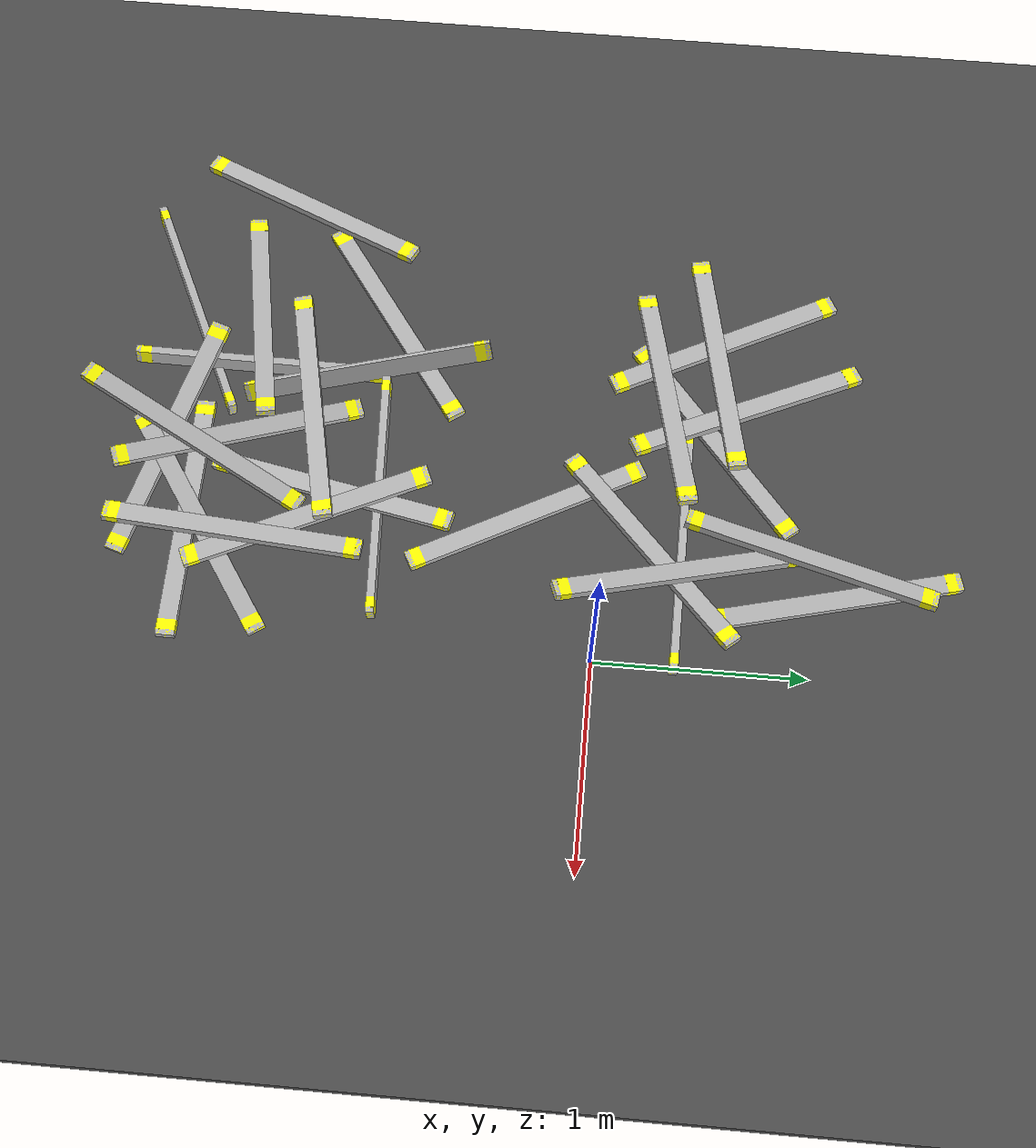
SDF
<sdf version="1.6">
 <world name="default">
  <model name="ground_plane">
   <static>1</static>
   <link name="link">
    <collision name="collision">
     <geometry><plane><normal>0 0 1</normal><size>100 100</size></plane></geometry>
     <surface><friction><ode><mu>100</mu><mu2>50</mu2></ode></friction></surface>
    </collision>
    <visual name="visual">
     <cast_shadows>0</cast_shadows>
     <geometry><plane><normal>0 0 1</normal><size>100 100</size></plane></geometry>
     <material>
      <script><uri>file://media/materials/scripts/gazebo.material</uri><name>Gazebo/Grey</name></script>
     </material>
    </visual>
   </link>
  </model>
  <model name="asphalt_plane">
   <static>1</static>
   <link name="link">
    <collision name="collision"><geometry><box><size>20 20 0.1</size></box></geometry></collision>
    <visual name="visual">
     <cast_shadows>0</cast_shadows>
     <geometry><box><size>20 20 0.1</size></box></geometry>
     <material>
      <script>
       <uri>model://asphalt_plane/materials/scripts</uri>
       <uri>model://asphalt_plane/materials/textures</uri>
       <name>vrc/asphalt</name>
      </script>
     </material>
    </visual>
   </link>
   <pose>0.013797 -0.037077 0 0 -0 0</pose>
  </model>
  <model name="lumber_2x4x48_clone">
   <link name="link">
    <inertial>
     <mass>1.4111</mass>
     <inertia><ixx>0.0011</ixx><ixy>0</ixy><ixz>0</ixz><iyy>0.1771</iyy><iyz>0</iyz><izz>0.1763</izz></inertia>
    </inertial>
    <collision name="collision">
     <geometry><box><size>1.2192 0.038 0.0888</size></box></geometry>
     <surface>
      <bounce><restitution_coefficient>0.01</restitution_coefficient><threshold>5</threshold></bounce>
      <friction><ode><mu>5</mu><mu2>5</mu2></ode></friction>
      <contact>
       <ode>
        <soft_cfm>0.001</soft_cfm>
        <kp>10000</kp>
        <kd>1000</kd>
        <max_vel>0.01</max_vel>
        <min_depth>0.001</min_depth>
       </ode>
      </contact>
     </surface>
    </collision>
    <visual name="visual">
     <geometry><mesh><uri>model://drc_practice_2x4/meshes/2x4x48.dae</uri><scale>1 1 1</scale></mesh></geometry>
    </visual>
   </link>
   <pose>-0.564855 0.384796 0.092089 -3.2e-05 -0.000881 -0.01386</pose>
  </model>
  <model name="lumber_2x4x48_clone_3_clone_0">
   <link name="link">
    <inertial>
     <mass>1.4111</mass>
     <inertia><ixx>0.0011</ixx><ixy>0</ixy><ixz>0</ixz><iyy>0.1771</iyy><iyz>0</iyz><izz>0.1763</izz></inertia>
    </inertial>
    <collision name="collision">
     <geometry><box><size>1.2192 0.038 0.0888</size></box></geometry>
     <surface>
      <bounce><restitution_coefficient>0.01</restitution_coefficient><threshold>5</threshold></bounce>
      <friction><ode><mu>5</mu><mu2>5</mu2></ode></friction>
      <contact>
       <ode>
        <soft_cfm>0.001</soft_cfm>
        <kp>10000</kp>
        <kd>1000</kd>
        <max_vel>0.01</max_vel>
        <min_depth>0.001</min_depth>
       </ode>
      </contact>
     </surface>
    </collision>
    <visual name="visual">
     <geometry><mesh><uri>model://drc_practice_2x4/meshes/2x4x48.dae</uri><scale>1 1 1</scale></mesh></geometry>
    </visual>
   </link>
   <pose>-0.531809 0.23385 0.147356 1.45529 -0.088716 0.719903</pose>
  </model>
  <model name="lumber_2x4x48_clone_3_clone_0_clone_1">
   <link name="link">
    <inertial>
     <mass>1.4111</mass>
     <inertia><ixx>0.0011</ixx><ixy>0</ixy><ixz>0</ixz><iyy>0.1771</iyy><iyz>0</iyz><izz>0.1763</izz></inertia>
    </inertial>
    <collision name="collision">
     <geometry><box><size>1.2192 0.038 0.0888</size></box></geometry>
     <surface>
      <bounce><restitution_coefficient>0.01</restitution_coefficient><threshold>5</threshold></bounce>
      <friction><ode><mu>5</mu><mu2>5</mu2></ode></friction>
      <contact>
       <ode>
        <soft_cfm>0.001</soft_cfm>
        <kp>10000</kp>
        <kd>1000</kd>
        <max_vel>0.01</max_vel>
        <min_depth>0.001</min_depth>
       </ode>
      </contact>
     </surface>
    </collision>
    <visual name="visual">
     <geometry><mesh><uri>model://drc_practice_2x4/meshes/2x4x48.dae</uri><scale>1 1 1</scale></mesh></geometry>
    </visual>
   </link>
   <pose>-0.536184 0.98559 0.161185 1.29971 0.060771 1.32855</pose>
  </model>
  <model name="lumber_2x4x48_clone_1_clone">
   <link name="link">
    <inertial>
     <mass>1.4111</mass>
     <inertia><ixx>0.0011</ixx><ixy>0</ixy><ixz>0</ixz><iyy>0.1771</iyy><iyz>0</iyz><izz>0.1763</izz></inertia>
    </inertial>
    <collision name="collision">
     <geometry><box><size>1.2192 0.038 0.0888</size></box></geometry>
     <surface>
      <bounce><restitution_coefficient>0.01</restitution_coefficient><threshold>5</threshold></bounce>
      <friction><ode><mu>5</mu><mu2>5</mu2></ode></friction>
      <contact>
       <ode>
        <soft_cfm>0.001</soft_cfm>
        <kp>10000</kp>
        <kd>1000</kd>
        <max_vel>0.01</max_vel>
        <min_depth>0.001</min_depth>
       </ode>
      </contact>
     </surface>
    </collision>
    <visual name="visual">
     <geometry><mesh><uri>model://drc_practice_2x4/meshes/2x4x48.dae</uri><scale>1 1 1</scale></mesh></geometry>
    </visual>
   </link>
   <pose>-0.54045 -1.96689 0.067655 -1.5708 -0 -0.002209</pose>
  </model>
  <model name="lumber_2x4x48_clone_3_clone_0_clone_0_clone">
   <link name="link">
    <inertial>
     <mass>1.4111</mass>
     <inertia><ixx>0.0011</ixx><ixy>0</ixy><ixz>0</ixz><iyy>0.1771</iyy><iyz>0</iyz><izz>0.1763</izz></inertia>
    </inertial>
    <collision name="collision">
     <geometry><box><size>1.2192 0.038 0.0888</size></box></geometry>
     <surface>
      <bounce><restitution_coefficient>0.01</restitution_coefficient><threshold>5</threshold></bounce>
      <friction><ode><mu>5</mu><mu2>5</mu2></ode></friction>
      <contact>
       <ode>
        <soft_cfm>0.001</soft_cfm>
        <kp>10000</kp>
        <kd>1000</kd>
        <max_vel>0.01</max_vel>
        <min_depth>0.001</min_depth>
       </ode>
      </contact>
     </surface>
    </collision>
    <visual name="visual">
     <geometry><mesh><uri>model://drc_practice_2x4/meshes/2x4x48.dae</uri><scale>1 1 1</scale></mesh></geometry>
    </visual>
   </link>
   <pose>-0.492309 -1.89058 0.136621 1.62195 0.115889 0.599865</pose>
  </model>
  <model name="lumber_2x4x48_clone_3_clone_0_clone_0_clone_0_clone">
   <link name="link">
    <inertial>
     <mass>1.4111</mass>
     <inertia><ixx>0.0011</ixx><ixy>0</ixy><ixz>0</ixz><iyy>0.1771</iyy><iyz>0</iyz><izz>0.1763</izz></inertia>
    </inertial>
    <collision name="collision">
     <geometry><box><size>1.2192 0.038 0.0888</size></box></geometry>
     <surface>
      <bounce><restitution_coefficient>0.01</restitution_coefficient><threshold>5</threshold></bounce>
      <friction><ode><mu>5</mu><mu2>5</mu2></ode></friction>
      <contact>
       <ode>
        <soft_cfm>0.001</soft_cfm>
        <kp>10000</kp>
        <kd>1000</kd>
        <max_vel>0.01</max_vel>
        <min_depth>0.001</min_depth>
       </ode>
      </contact>
     </surface>
    </collision>
    <visual name="visual">
     <geometry><mesh><uri>model://drc_practice_2x4/meshes/2x4x48.dae</uri><scale>1 1 1</scale></mesh></geometry>
    </visual>
   </link>
   <pose>-0.906044 -2.09777 0.162909 1.59689 -0.159865 2.83092</pose>
  </model>
  <model name="lumber_2x4x48_clone_0_clone">
   <link name="link">
    <inertial>
     <mass>1.4111</mass>
     <inertia><ixx>0.0011</ixx><ixy>0</ixy><ixz>0</ixz><iyy>0.1771</iyy><iyz>0</iyz><izz>0.1763</izz></inertia>
    </inertial>
    <collision name="collision">
     <geometry><box><size>1.2192 0.038 0.0888</size></box></geometry>
     <surface>
      <bounce><restitution_coefficient>0.01</restitution_coefficient><threshold>5</threshold></bounce>
      <friction><ode><mu>5</mu><mu2>5</mu2></ode></friction>
      <contact>
       <ode>
        <soft_cfm>0.001</soft_cfm>
        <kp>10000</kp>
        <kd>1000</kd>
        <max_vel>0.01</max_vel>
        <min_depth>0.001</min_depth>
       </ode>
      </contact>
     </surface>
    </collision>
    <visual name="visual">
     <geometry><mesh><uri>model://drc_practice_2x4/meshes/2x4x48.dae</uri><scale>1 1 1</scale></mesh></geometry>
    </visual>
   </link>
   <pose>-0.714931 -1.06432 0.105095 0.026568 0.021171 0.050504</pose>
  </model>
  <model name="lumber_2x4x48_clone_3_clone_0_clone_1_clone">
   <link name="link">
    <inertial>
     <mass>1.4111</mass>
     <inertia><ixx>0.0011</ixx><ixy>0</ixy><ixz>0</ixz><iyy>0.1771</iyy><iyz>0</iyz><izz>0.1763</izz></inertia>
    </inertial>
    <collision name="collision">
     <geometry><box><size>1.2192 0.038 0.0888</size></box></geometry>
     <surface>
      <bounce><restitution_coefficient>0.01</restitution_coefficient><threshold>5</threshold></bounce>
      <friction><ode><mu>5</mu><mu2>5</mu2></ode></friction>
      <contact>
       <ode>
        <soft_cfm>0.001</soft_cfm>
        <kp>10000</kp>
        <kd>1000</kd>
        <max_vel>0.01</max_vel>
        <min_depth>0.001</min_depth>
       </ode>
      </contact>
     </surface>
    </collision>
    <visual name="visual">
     <geometry><mesh><uri>model://drc_practice_2x4/meshes/2x4x48.dae</uri><scale>1 1 1</scale></mesh></geometry>
    </visual>
   </link>
   <pose>-0.7039 -1.28658 0.137769 1.6252 -0.111208 1.33231</pose>
  </model>
  <model name="lumber_2x4x48_clone_3_clone_0_clone_1_clone_clone_1">
   <link name="link">
    <inertial>
     <mass>1.4111</mass>
     <inertia><ixx>0.0011</ixx><ixy>0</ixy><ixz>0</ixz><iyy>0.1771</iyy><iyz>0</iyz><izz>0.1763</izz></inertia>
    </inertial>
    <collision name="collision">
     <geometry><box><size>1.2192 0.038 0.0888</size></box></geometry>
     <surface>
      <bounce><restitution_coefficient>0.01</restitution_coefficient><threshold>5</threshold></bounce>
      <friction><ode><mu>5</mu><mu2>5</mu2></ode></friction>
      <contact>
       <ode>
        <soft_cfm>0.001</soft_cfm>
        <kp>10000</kp>
        <kd>1000</kd>
        <max_vel>0.01</max_vel>
        <min_depth>0.001</min_depth>
       </ode>
      </contact>
     </surface>
    </collision>
    <visual name="visual">
     <geometry><mesh><uri>model://drc_practice_2x4/meshes/2x4x48.dae</uri><scale>1 1 1</scale></mesh></geometry>
    </visual>
   </link>
   <pose>-1.34175 -1.71077 0.147765 3.05986 0.093066 1.60866</pose>
  </model>
  <model name="lumber_2x4x48_clone_3_clone_0_clone_1_clone_clone_2">
   <link name="link">
    <inertial>
     <mass>1.4111</mass>
     <inertia><ixx>0.0011</ixx><ixy>0</ixy><ixz>0</ixz><iyy>0.1771</iyy><iyz>0</iyz><izz>0.1763</izz></inertia>
    </inertial>
    <collision name="collision">
     <geometry><box><size>1.2192 0.038 0.0888</size></box></geometry>
     <surface>
      <bounce><restitution_coefficient>0.01</restitution_coefficient><threshold>5</threshold></bounce>
      <friction><ode><mu>5</mu><mu2>5</mu2></ode></friction>
      <contact>
       <ode>
        <soft_cfm>0.001</soft_cfm>
        <kp>10000</kp>
        <kd>1000</kd>
        <max_vel>0.01</max_vel>
        <min_depth>0.001</min_depth>
       </ode>
      </contact>
     </surface>
    </collision>
    <visual name="visual">
     <geometry><mesh><uri>model://drc_practice_2x4/meshes/2x4x48.dae</uri><scale>1 1 1</scale></mesh></geometry>
    </visual>
   </link>
   <pose>-1.65702 -2.09337 0.091499 -0.099685 0.002252 0.448742</pose>
  </model>
  <model name="lumber_2x4x48_clone_3_clone_0_clone_clone">
   <link name="link">
    <inertial>
     <mass>1.4111</mass>
     <inertia><ixx>0.0011</ixx><ixy>0</ixy><ixz>0</ixz><iyy>0.1771</iyy><iyz>0</iyz><izz>0.1763</izz></inertia>
    </inertial>
    <collision name="collision">
     <geometry><box><size>1.2192 0.038 0.0888</size></box></geometry>
     <surface>
      <bounce><restitution_coefficient>0.01</restitution_coefficient><threshold>5</threshold></bounce>
      <friction><ode><mu>5</mu><mu2>5</mu2></ode></friction>
      <contact>
       <ode>
        <soft_cfm>0.001</soft_cfm>
        <kp>10000</kp>
        <kd>1000</kd>
        <max_vel>0.01</max_vel>
        <min_depth>0.001</min_depth>
       </ode>
      </contact>
     </surface>
    </collision>
    <visual name="visual">
     <geometry><mesh><uri>model://drc_practice_2x4/meshes/2x4x48.dae</uri><scale>1 1 1</scale></mesh></geometry>
    </visual>
   </link>
   <pose>-1.67699 -1.09343 0.067383 1.56479 -0.00044 0.618252</pose>
  </model>
  <model name="lumber_2x4x48_clone_3_clone_0_clone_1_clone_clone_4">
   <link name="link">
    <inertial>
     <mass>1.4111</mass>
     <inertia><ixx>0.0011</ixx><ixy>0</ixy><ixz>0</ixz><iyy>0.1771</iyy><iyz>0</iyz><izz>0.1763</izz></inertia>
    </inertial>
    <collision name="collision">
     <geometry><box><size>1.2192 0.038 0.0888</size></box></geometry>
     <surface>
      <bounce><restitution_coefficient>0.01</restitution_coefficient><threshold>5</threshold></bounce>
      <friction><ode><mu>5</mu><mu2>5</mu2></ode></friction>
      <contact>
       <ode>
        <soft_cfm>0.001</soft_cfm>
        <kp>10000</kp>
        <kd>1000</kd>
        <max_vel>0.01</max_vel>
        <min_depth>0.001</min_depth>
       </ode>
      </contact>
     </surface>
    </collision>
    <visual name="visual">
     <geometry><mesh><uri>model://drc_practice_2x4/meshes/2x4x48.dae</uri><scale>1 1 1</scale></mesh></geometry>
    </visual>
   </link>
   <pose>-1.15889 0.514378 0.067165 1.55912 -0.000701 0.690586</pose>
  </model>
  <model name="lumber_2x4x48_clone_3_clone_0_clone_clone_0_clone_0">
   <link name="link">
    <inertial>
     <mass>1.4111</mass>
     <inertia><ixx>0.0011</ixx><ixy>0</ixy><ixz>0</ixz><iyy>0.1771</iyy><iyz>0</iyz><izz>0.1763</izz></inertia>
    </inertial>
    <collision name="collision">
     <geometry><box><size>1.2192 0.038 0.0888</size></box></geometry>
     <surface>
      <bounce><restitution_coefficient>0.01</restitution_coefficient><threshold>5</threshold></bounce>
      <friction><ode><mu>5</mu><mu2>5</mu2></ode></friction>
      <contact>
       <ode>
        <soft_cfm>0.001</soft_cfm>
        <kp>10000</kp>
        <kd>1000</kd>
        <max_vel>0.01</max_vel>
        <min_depth>0.001</min_depth>
       </ode>
      </contact>
     </surface>
    </collision>
    <visual name="visual">
     <geometry><mesh><uri>model://drc_practice_2x4/meshes/2x4x48.dae</uri><scale>1 1 1</scale></mesh></geometry>
    </visual>
   </link>
   <pose>-0.955731 -1.76433 0.165265 -1.65341 -0.155884 -1.18354</pose>
  </model>
  <model name="lumber_2x4x48_clone_3_clone_0_clone_clone_0_clone_0_clone_2">
   <link name="link">
    <inertial>
     <mass>1.4111</mass>
     <inertia><ixx>0.0011</ixx><ixy>0</ixy><ixz>0</ixz><iyy>0.1771</iyy><iyz>0</iyz><izz>0.1763</izz></inertia>
    </inertial>
    <collision name="collision">
     <geometry><box><size>1.2192 0.038 0.0888</size></box></geometry>
     <surface>
      <bounce><restitution_coefficient>0.01</restitution_coefficient><threshold>5</threshold></bounce>
      <friction><ode><mu>5</mu><mu2>5</mu2></ode></friction>
      <contact>
       <ode>
        <soft_cfm>0.001</soft_cfm>
        <kp>10000</kp>
        <kd>1000</kd>
        <max_vel>0.01</max_vel>
        <min_depth>0.001</min_depth>
       </ode>
      </contact>
     </surface>
    </collision>
    <visual name="visual">
     <geometry><mesh><uri>model://drc_practice_2x4/meshes/2x4x48.dae</uri><scale>1 1 1</scale></mesh></geometry>
    </visual>
   </link>
   <pose>-1.3432 -1.18878 0.163336 -2.48424 0.112059 -1.349</pose>
  </model>
  <model name="lumber_2x4x48_clone_3_clone_0_clone_clone_0_clone_0_clone_3">
   <link name="link">
    <inertial>
     <mass>1.4111</mass>
     <inertia><ixx>0.0011</ixx><ixy>0</ixy><ixz>0</ixz><iyy>0.1771</iyy><iyz>0</iyz><izz>0.1763</izz></inertia>
    </inertial>
    <collision name="collision">
     <geometry><box><size>1.2192 0.038 0.0888</size></box></geometry>
     <surface>
      <bounce><restitution_coefficient>0.01</restitution_coefficient><threshold>5</threshold></bounce>
      <friction><ode><mu>5</mu><mu2>5</mu2></ode></friction>
      <contact>
       <ode>
        <soft_cfm>0.001</soft_cfm>
        <kp>10000</kp>
        <kd>1000</kd>
        <max_vel>0.01</max_vel>
        <min_depth>0.001</min_depth>
       </ode>
      </contact>
     </surface>
    </collision>
    <visual name="visual">
     <geometry><mesh><uri>model://drc_practice_2x4/meshes/2x4x48.dae</uri><scale>1 1 1</scale></mesh></geometry>
    </visual>
   </link>
   <pose>-0.358396 1.1113 0.108143 -1.58218 -0.065959 -1.30047</pose>
  </model>
  <model name="lumber_2x4x48_clone_3_clone_0_clone_clone_0_clone_0_clone_6">
   <link name="link">
    <inertial>
     <mass>1.4111</mass>
     <inertia><ixx>0.0011</ixx><ixy>0</ixy><ixz>0</ixz><iyy>0.1771</iyy><iyz>0</iyz><izz>0.1763</izz></inertia>
    </inertial>
    <collision name="collision">
     <geometry><box><size>1.2192 0.038 0.0888</size></box></geometry>
     <surface>
      <bounce><restitution_coefficient>0.01</restitution_coefficient><threshold>5</threshold></bounce>
      <friction><ode><mu>5</mu><mu2>5</mu2></ode></friction>
      <contact>
       <ode>
        <soft_cfm>0.001</soft_cfm>
        <kp>10000</kp>
        <kd>1000</kd>
        <max_vel>0.01</max_vel>
        <min_depth>0.001</min_depth>
       </ode>
      </contact>
     </surface>
    </collision>
    <visual name="visual">
     <geometry><mesh><uri>model://drc_practice_2x4/meshes/2x4x48.dae</uri><scale>1 1 1</scale></mesh></geometry>
    </visual>
   </link>
   <pose>-1.68303 0.539574 0.089446 -1.56121 -0.035744 -1.07972</pose>
  </model>
  <model name="lumber_2x4x48_clone_3_clone_0_clone_clone_0_clone_0_clone_7">
   <link name="link">
    <inertial>
     <mass>1.4111</mass>
     <inertia><ixx>0.0011</ixx><ixy>0</ixy><ixz>0</ixz><iyy>0.1771</iyy><iyz>0</iyz><izz>0.1763</izz></inertia>
    </inertial>
    <collision name="collision">
     <geometry><box><size>1.2192 0.038 0.0888</size></box></geometry>
     <surface>
      <bounce><restitution_coefficient>0.01</restitution_coefficient><threshold>5</threshold></bounce>
      <friction><ode><mu>5</mu><mu2>5</mu2></ode></friction>
      <contact>
       <ode>
        <soft_cfm>0.001</soft_cfm>
        <kp>10000</kp>
        <kd>1000</kd>
        <max_vel>0.01</max_vel>
        <min_depth>0.001</min_depth>
       </ode>
      </contact>
     </surface>
    </collision>
    <visual name="visual">
     <geometry><mesh><uri>model://drc_practice_2x4/meshes/2x4x48.dae</uri><scale>1 1 1</scale></mesh></geometry>
    </visual>
   </link>
   <pose>-1.30678 0.664329 0.125724 -1.47273 -0.088664 -1.10552</pose>
  </model>
  <model name="lumber_2x4x48_clone_3_clone_0_clone_clone_0_clone_0_clone_0_clone">
   <link name="link">
    <inertial>
     <mass>1.4111</mass>
     <inertia><ixx>0.0011</ixx><ixy>0</ixy><ixz>0</ixz><iyy>0.1771</iyy><iyz>0</iyz><izz>0.1763</izz></inertia>
    </inertial>
    <collision name="collision">
     <geometry><box><size>1.2192 0.038 0.0888</size></box></geometry>
     <surface>
      <bounce><restitution_coefficient>0.01</restitution_coefficient><threshold>5</threshold></bounce>
      <friction><ode><mu>5</mu><mu2>5</mu2></ode></friction>
      <contact>
       <ode>
        <soft_cfm>0.001</soft_cfm>
        <kp>10000</kp>
        <kd>1000</kd>
        <max_vel>0.01</max_vel>
        <min_depth>0.001</min_depth>
       </ode>
      </contact>
     </surface>
    </collision>
    <visual name="visual">
     <geometry><mesh><uri>model://drc_practice_2x4/meshes/2x4x48.dae</uri><scale>1 1 1</scale></mesh></geometry>
    </visual>
   </link>
   <pose>-0.686605 -0.356689 0.067312 -1.56147 -0.000353 -1.07862</pose>
  </model>
  <model name="lumber_2x4x48_clone_3_clone_0_clone_clone_0_clone_0_clone_0_clone_0">
   <link name="link">
    <inertial>
     <mass>1.4111</mass>
     <inertia><ixx>0.0011</ixx><ixy>0</ixy><ixz>0</ixz><iyy>0.1771</iyy><iyz>0</iyz><izz>0.1763</izz></inertia>
    </inertial>
    <collision name="collision">
     <geometry><box><size>1.2192 0.038 0.0888</size></box></geometry>
     <surface>
      <bounce><restitution_coefficient>0.01</restitution_coefficient><threshold>5</threshold></bounce>
      <friction><ode><mu>5</mu><mu2>5</mu2></ode></friction>
      <contact>
       <ode>
        <soft_cfm>0.001</soft_cfm>
        <kp>10000</kp>
        <kd>1000</kd>
        <max_vel>0.01</max_vel>
        <min_depth>0.001</min_depth>
       </ode>
      </contact>
     </surface>
    </collision>
    <visual name="visual">
     <geometry><mesh><uri>model://drc_practice_2x4/meshes/2x4x48.dae</uri><scale>1 1 1</scale></mesh></geometry>
    </visual>
   </link>
   <pose>-0.539741 -1.38076 0.183145 -1.62329 0.065922 -1.15344</pose>
  </model>
  <model name="lumber_2x4x48_clone_3_clone_0_clone_clone_0_clone_0_clone_9">
   <link name="link">
    <inertial>
     <mass>1.4111</mass>
     <inertia><ixx>0.0011</ixx><ixy>0</ixy><ixz>0</ixz><iyy>0.1771</iyy><iyz>0</iyz><izz>0.1763</izz></inertia>
    </inertial>
    <collision name="collision">
     <geometry><box><size>1.2192 0.038 0.0888</size></box></geometry>
     <surface>
      <bounce><restitution_coefficient>0.01</restitution_coefficient><threshold>5</threshold></bounce>
      <friction><ode><mu>5</mu><mu2>5</mu2></ode></friction>
      <contact>
       <ode>
        <soft_cfm>0.001</soft_cfm>
        <kp>10000</kp>
        <kd>1000</kd>
        <max_vel>0.01</max_vel>
        <min_depth>0.001</min_depth>
       </ode>
      </contact>
     </surface>
    </collision>
    <visual name="visual">
     <geometry><mesh><uri>model://drc_practice_2x4/meshes/2x4x48.dae</uri><scale>1 1 1</scale></mesh></geometry>
    </visual>
   </link>
   <pose>-0.386587 0.371688 0.238045 -1.39031 -0.196018 -1.25764</pose>
  </model>
  <model name="lumber_2x4x48_clone_3_clone_0_clone_clone_0_clone_0_clone_11_clone_0">
   <link name="link">
    <inertial>
     <mass>1.4111</mass>
     <inertia><ixx>0.0011</ixx><ixy>0</ixy><ixz>0</ixz><iyy>0.1771</iyy><iyz>0</iyz><izz>0.1763</izz></inertia>
    </inertial>
    <collision name="collision">
     <geometry><box><size>1.2192 0.038 0.0888</size></box></geometry>
     <surface>
      <bounce><restitution_coefficient>0.01</restitution_coefficient><threshold>5</threshold></bounce>
      <friction><ode><mu>5</mu><mu2>5</mu2></ode></friction>
      <contact>
       <ode>
        <soft_cfm>0.001</soft_cfm>
        <kp>10000</kp>
        <kd>1000</kd>
        <max_vel>0.01</max_vel>
        <min_depth>0.001</min_depth>
       </ode>
      </contact>
     </surface>
    </collision>
    <visual name="visual">
     <geometry><mesh><uri>model://drc_practice_2x4/meshes/2x4x48.dae</uri><scale>1 1 1</scale></mesh></geometry>
    </visual>
   </link>
   <pose>-0.876244 -1.96362 0.235754 1.6331 -0.163696 -2.02637</pose>
  </model>
  <model name="lumber_2x4x48_clone_3_clone_0_clone_clone_0_clone_0_clone_11_clone_3">
   <link name="link">
    <inertial>
     <mass>1.4111</mass>
     <inertia><ixx>0.0011</ixx><ixy>0</ixy><ixz>0</ixz><iyy>0.1771</iyy><iyz>0</iyz><izz>0.1763</izz></inertia>
    </inertial>
    <collision name="collision">
     <geometry><box><size>1.2192 0.038 0.0888</size></box></geometry>
     <surface>
      <bounce><restitution_coefficient>0.01</restitution_coefficient><threshold>5</threshold></bounce>
      <friction><ode><mu>5</mu><mu2>5</mu2></ode></friction>
      <contact>
       <ode>
        <soft_cfm>0.001</soft_cfm>
        <kp>10000</kp>
        <kd>1000</kd>
        <max_vel>0.01</max_vel>
        <min_depth>0.001</min_depth>
       </ode>
      </contact>
     </surface>
    </collision>
    <visual name="visual">
     <geometry><mesh><uri>model://drc_practice_2x4/meshes/2x4x48.dae</uri><scale>1 1 1</scale></mesh></geometry>
    </visual>
   </link>
   <pose>-0.424571 -1.70838 0.220765 -1.45933 -0.029564 -1.6361</pose>
  </model>
  <model name="lumber_2x4x48_clone_3_clone_0_clone_clone_0_clone_0_clone_11_clone_14_clone_clone_3">
   <link name="link">
    <inertial>
     <mass>1.4111</mass>
     <inertia><ixx>0.0011</ixx><ixy>0</ixy><ixz>0</ixz><iyy>0.1771</iyy><iyz>0</iyz><izz>0.1763</izz></inertia>
    </inertial>
    <collision name="collision">
     <geometry><box><size>1.2192 0.038 0.0888</size></box></geometry>
     <surface>
      <bounce><restitution_coefficient>0.01</restitution_coefficient><threshold>5</threshold></bounce>
      <friction><ode><mu>5</mu><mu2>5</mu2></ode></friction>
      <contact>
       <ode>
        <soft_cfm>0.001</soft_cfm>
        <kp>10000</kp>
        <kd>1000</kd>
        <max_vel>0.01</max_vel>
        <min_depth>0.001</min_depth>
       </ode>
      </contact>
     </surface>
    </collision>
    <visual name="visual">
     <geometry><mesh><uri>model://drc_practice_2x4/meshes/2x4x48.dae</uri><scale>1 1 1</scale></mesh></geometry>
    </visual>
   </link>
   <pose>-1.55262 0.513041 0.142715 1.57421 0.107043 -2.95935</pose>
  </model>
  <model name="lumber_2x4x48_clone_3_clone_0_clone_clone_0_clone_0_clone_11_clone_14_clone_clone_4">
   <link name="link">
    <inertial>
     <mass>1.4111</mass>
     <inertia><ixx>0.0011</ixx><ixy>0</ixy><ixz>0</ixz><iyy>0.1771</iyy><iyz>0</iyz><izz>0.1763</izz></inertia>
    </inertial>
    <collision name="collision">
     <geometry><box><size>1.2192 0.038 0.0888</size></box></geometry>
     <surface>
      <bounce><restitution_coefficient>0.01</restitution_coefficient><threshold>5</threshold></bounce>
      <friction><ode><mu>5</mu><mu2>5</mu2></ode></friction>
      <contact>
       <ode>
        <soft_cfm>0.001</soft_cfm>
        <kp>10000</kp>
        <kd>1000</kd>
        <max_vel>0.01</max_vel>
        <min_depth>0.001</min_depth>
       </ode>
      </contact>
     </surface>
    </collision>
    <visual name="visual">
     <geometry><mesh><uri>model://drc_practice_2x4/meshes/2x4x48.dae</uri><scale>1 1 1</scale></mesh></geometry>
    </visual>
   </link>
   <pose>-1.61101 -1.74995 0.167038 1.68778 0.155996 -2.94794</pose>
  </model>
  <model name="lumber_2x4x48_clone_3_clone_0_clone_clone_0_clone_0_clone_11_clone_14_clone_clone_5">
   <link name="link">
    <inertial>
     <mass>1.4111</mass>
     <inertia><ixx>0.0011</ixx><ixy>0</ixy><ixz>0</ixz><iyy>0.1771</iyy><iyz>0</iyz><izz>0.1763</izz></inertia>
    </inertial>
    <collision name="collision">
     <geometry><box><size>1.2192 0.038 0.0888</size></box></geometry>
     <surface>
      <bounce><restitution_coefficient>0.01</restitution_coefficient><threshold>5</threshold></bounce>
      <friction><ode><mu>5</mu><mu2>5</mu2></ode></friction>
      <contact>
       <ode>
        <soft_cfm>0.001</soft_cfm>
        <kp>10000</kp>
        <kd>1000</kd>
        <max_vel>0.01</max_vel>
        <min_depth>0.001</min_depth>
       </ode>
      </contact>
     </surface>
    </collision>
    <visual name="visual">
     <geometry><mesh><uri>model://drc_practice_2x4/meshes/2x4x48.dae</uri><scale>1 1 1</scale></mesh></geometry>
    </visual>
   </link>
   <pose>-1.11756 -1.42619 0.205583 1.49499 0.043215 -2.92585</pose>
  </model>
  <model name="lumber_2x4x48_clone_3_clone_0_clone_clone_0_clone_0_clone_11_clone_14_clone_clone_8">
   <link name="link">
    <inertial>
     <mass>1.4111</mass>
     <inertia><ixx>0.0011</ixx><ixy>0</ixy><ixz>0</ixz><iyy>0.1771</iyy><iyz>0</iyz><izz>0.1763</izz></inertia>
    </inertial>
    <collision name="collision">
     <geometry><box><size>1.2192 0.038 0.0888</size></box></geometry>
     <surface>
      <bounce><restitution_coefficient>0.01</restitution_coefficient><threshold>5</threshold></bounce>
      <friction><ode><mu>5</mu><mu2>5</mu2></ode></friction>
      <contact>
       <ode>
        <soft_cfm>0.001</soft_cfm>
        <kp>10000</kp>
        <kd>1000</kd>
        <max_vel>0.01</max_vel>
        <min_depth>0.001</min_depth>
       </ode>
      </contact>
     </surface>
    </collision>
    <visual name="visual">
     <geometry><mesh><uri>model://drc_practice_2x4/meshes/2x4x48.dae</uri><scale>1 1 1</scale></mesh></geometry>
    </visual>
   </link>
   <pose>-1.32733 0.268924 0.171137 1.62745 0.129939 -2.93096</pose>
  </model>
  <model name="lumber_2x4x48_clone_3_clone_0_clone_clone_0_clone_0_clone_11_clone_clone_0">
   <link name="link">
    <inertial>
     <mass>1.4111</mass>
     <inertia><ixx>0.0011</ixx><ixy>0</ixy><ixz>0</ixz><iyy>0.1771</iyy><iyz>0</iyz><izz>0.1763</izz></inertia>
    </inertial>
    <collision name="collision">
     <geometry><box><size>1.2192 0.038 0.0888</size></box></geometry>
     <surface>
      <bounce><restitution_coefficient>0.01</restitution_coefficient><threshold>5</threshold></bounce>
      <friction><ode><mu>5</mu><mu2>5</mu2></ode></friction>
      <contact>
       <ode>
        <soft_cfm>0.001</soft_cfm>
        <kp>10000</kp>
        <kd>1000</kd>
        <max_vel>0.01</max_vel>
        <min_depth>0.001</min_depth>
       </ode>
      </contact>
     </surface>
    </collision>
    <visual name="visual">
     <geometry><mesh><uri>model://drc_practice_2x4/meshes/2x4x48.dae</uri><scale>1 1 1</scale></mesh></geometry>
    </visual>
   </link>
   <pose>-2.2958 -1.59487 0.093298 1.65849 0.035853 -1.98947</pose>
  </model>
 </world>
</sdf>
